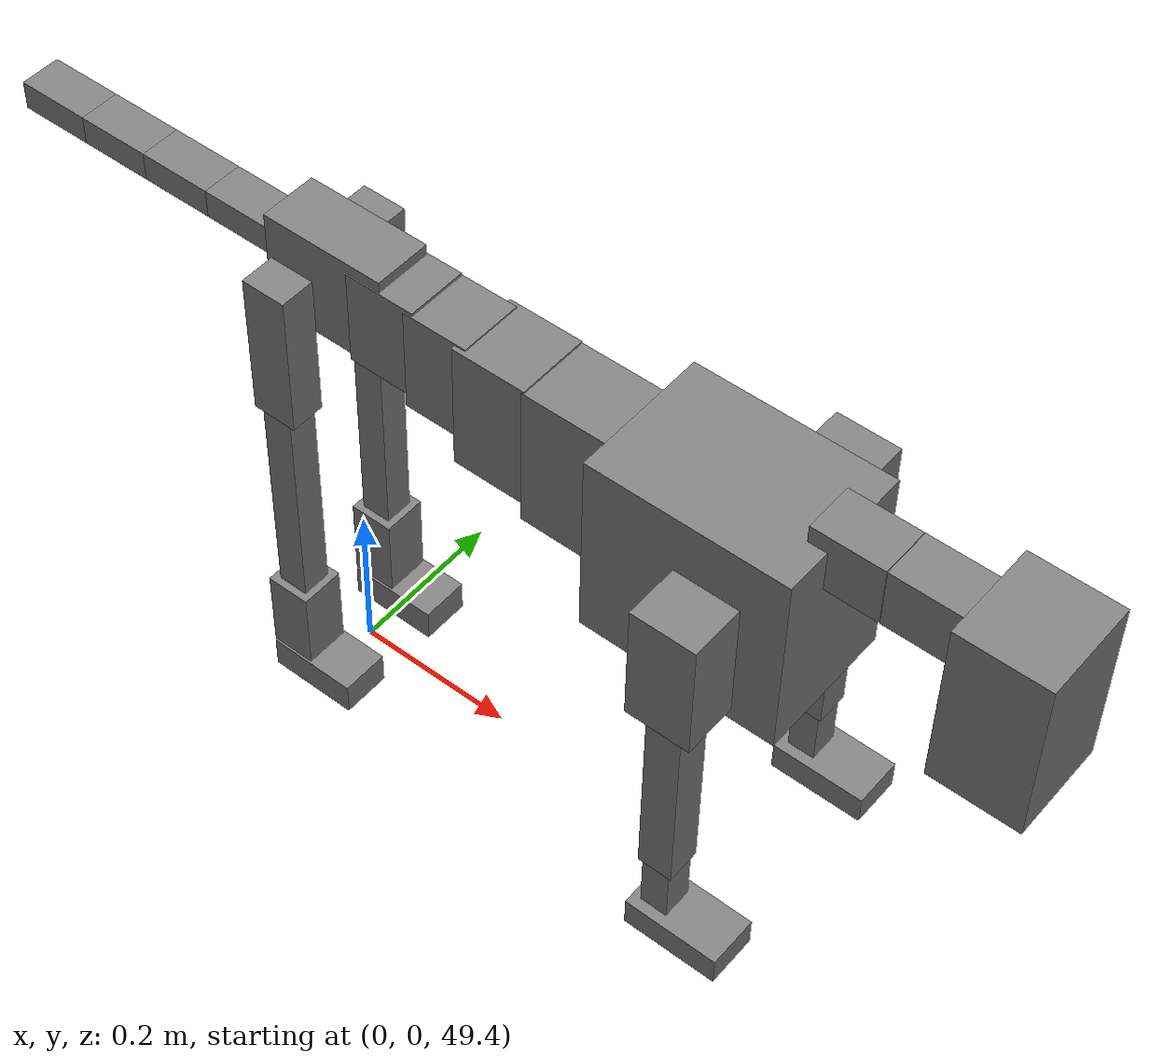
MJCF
<mujoco model="dog">

    <default>
        <joint armature="0.02" stiffness="1" damping="0.2" limited="true"/>
        <geom condim="3" friction="1 0.05 0.05" margin="0.01"/>
        <motor ctrllimited="true" ctrlrange="-1.0 1.0" forcelimited="true" gear="50"/>
    </default>

    <compiler inertiafromgeom="true" angle="radian"/>

    <option timestep="0.016" iterations="50" tolerance="1e-10" solver="Newton" jacobian="dense" cone="pyramidal"/>

    <size nconmax="20000" njmax="60000" nstack="5000000"/>
    <visual>
        <map force="0.1" zfar="30"/>
        <rgba haze="0.15 0.25 0.35 1"/>
        <quality shadowsize="2048"/>
        <global offwidth="800" offheight="800"/>
    </visual>

    <asset>
        <texture type="skybox" builtin="gradient" rgb1="0.3 0.5 0.7" rgb2="0 0 0" width="512" height="512"/>
        <texture name="texplane" type="2d" builtin="checker" rgb1=".2 .3 .4" rgb2=".1 0.15 0.2" width="512" height="512"
                 mark="cross" markrgb=".8 .8 .8"/>
        <texture name="texgeom" type="cube" builtin="flat" mark="cross" width="127" height="1278" rgb1="0.8 0.6 0.4"
                 rgb2="0.8 0.6 0.4" markrgb="1 1 1" random="0.01"/>

        <material name="matplane" reflectance="0.3" texture="texplane" texrepeat="1 1" texuniform="true"/>
        <material name="matgeom" texture="texgeom" texuniform="true" rgba="0.8 0.6 .4 1"/>
    </asset>

    <worldbody>
        <geom name="floor" pos="0 0 0" size="0 0 .25" type="plane" material="matplane" condim="3"/>

        <light directional="false" diffuse=".2 .2 .2" specular="0 0 0" pos="0 0 5" dir="0 0 -1" castshadow="false"/>
        <light mode="targetbodycom" target="torso" directional="false" diffuse=".8 .8 .8" specular="0.3 0.3 0.3"
               pos="0 0 4.0" dir="0 0 -1"/>

        <body name="root" pos="0 0 50">
            <freejoint name="root_1"/>
            <geom type="box" pos="0 0 -0.02" size="0.0774  0.0358  0.063" density="2030"/>

            <body name="spine1" pos="0.054 0 0">
                <joint name="spine1_y" axis="0 1 0" range="0 0.7" limited="true"/>
                <geom type="box" pos="0.02375 0 -0.03" size="0.04375  0.0375  0.05985" density="2030"/>

                <body name="spine2" pos="0.0612 0 0">
                    <joint name="spine2_y" axis="0 1 0" range="-0.15 0.15" limited="true"/>
                    <geom type="box" pos="0.03555  0  -0.04" size="0.04055  0.039  0.06615" density="2030"/>

                    <body name="spine3" pos="0.0730 0 0">
                        <joint name="spine3_y" axis="0 1 0" range="-0.15 0.15" limited="true"/>
                        <geom type="box" pos="0.03555  0  -0.057" size="0.04555  0.0445  0.081" density="2030"/>

                        <body name="spine4" pos="0.0780 0 0">
                            <joint name="spine4_y" axis="0 1 0" range="-0.15 0.15" limited="true"/>
                            <geom type="box" pos="0.05265  0  -0.07" size="0.05265  0.045  0.09135" density="2030"/>

                            <body name="torso" pos="0.1082 0 0">
                                <joint name="torso_y" axis="0 1 0" range="-0.15 0.15" limited="true"/>
                                <geom type="box" pos="0.11925  0  -0.085" size="0.11925  0.085  0.11745"
                                      density="2030"/>

                                <body name="neck1" pos="0.2160  0   0.0180">
                                    <joint name="neck1_y" axis="0 1 0" range="-1.2  -1" limited="true"/>
                                    <geom type="box" pos="0.0423  0  0" size="0.0423  0.03  0.036" density="2325"/>

                                    <body name="neck2" pos="0.0853  0  0">
                                        <joint name="neck2_y" axis="0 1 0" range="0.1  0" limited="true"/>
                                        <geom type="box" pos="0.0423  0  0" size="0.0423  0.03  0.036" density="2325"/>

                                        <body name="head" pos="0.0853  0  0">
                                            <joint name="head_y" axis="0 1 0" range="-0.3  -0.2" limited="true"/>
                                            <geom type="box" pos="0.0531  0  -0.055" size="0.0531  0.06  0.1044"
                                                  density="4030"/>

                                        </body>
                                    </body>
                                </body>

                                <body name="front_shoulder" pos="0.156  0   -0.0480">
                                    <joint name="front_shoulder_y" axis="0 1 0" range="-1 1.5" limited="true"/>
                                    <geom type="box" pos="0 0.13 -0.0475" size="0.0385  0.0329  0.0742" density="1158"/>
                                    <geom type="box" pos="0 -0.13 -0.0475" size="0.0385  0.0329  0.0742"
                                          density="1158"/>

                                    <body name="front_elbow" pos="0  0  -0.0951">
                                        <joint name="front_elbow_y" axis="0 1 0" range="-2 0" limited="true"/>
                                        <geom type="box" pos="0 0.13 -0.1364" size="0.0208  0.0213  0.1364"
                                              density="1081"/>
                                        <geom type="box" pos="0 -0.13 -0.1364" size="0.0208  0.0213  0.1364"
                                              density="1081"/>

                                        <body name="front_wrist" pos="0  0  -0.2727">
                                            <joint name="front_wrist_y" axis="0 1 0" range="-0.2 0" limited="true"/>
                                            <geom type="box" pos="0 0.13 -0.0437" size="0.0167  0.0186  0.0568"
                                                  density="1664"/>
                                            <geom type="box" pos="0 -0.13 -0.0437" size="0.0167  0.0186  0.0568"
                                                  density="1664"/>

                                            <body name="front_finger_end" pos="0  0  -0.0874">
                                                <joint name="front_finger_y" axis="0 1 0" range="-0.4 1"
                                                       limited="true"/>
                                                <geom type="box" pos="0.0316  0.13  -0.0032"
                                                      size="0.0580  0.0316  0.0182" density="1515"/>
                                                <geom type="box" pos="0.0316  -0.13  -0.0032"
                                                      size="0.0580  0.0316  0.0182" density="1515"/>

                                            </body>

                                        </body>
                                    </body>
                                </body>

                            </body>
                        </body>
                    </body>
                </body>
            </body>

            <body name="back_hip" pos="-0.03 0 -0.018">
                <joint name="back_hip_y" axis="0 1 0" range="-1.5 0.3" limited="true"/>
                <geom type="box" pos="0 0.07 -0.0685" size="0.0276  0.0216  0.0913" density="1154"/>
                <geom type="box" pos="0 -0.07 -0.0685" size="0.0276  0.0216  0.0913" density="1154"/>

                <body name="back_knee" pos="0  0  -0.1371">
                    <joint name="back_knee_y" axis="0 1 0" range="0 2.8" limited="true"/>
                    <geom type="box" pos="0 0.07 -0.1559" size="0.0189  0.0186  0.1715" density="1227"/>
                    <geom type="box" pos="0 -0.07 -0.1559" size="0.0189  0.0186  0.1715" density="1227"/>

                    <body name="back_ankle" pos="0  0  -0.3118">
                        <joint name="back_ankle_y" axis="0 1 0" range="-2.2 0" limited="true"/>
                        <geom type="box" pos="0 0.07 -0.0553" size="0.0276  0.0276  0.0666" density="1284"/>
                        <geom type="box" pos="0 -0.07 -0.0553" size="0.0276  0.0276  0.0666" density="1284"/>

                        <body name="back_toe_end" pos="0  0  -0.1106">
                            <joint name="back_toe_y" axis="0 1 0" range="-0.4 1" limited="true"/>
                            <geom type="box" pos="0.0303  0.07  -0.0056" size="0.0556  0.0303  0.0206" density="1515"/>
                            <geom type="box" pos="0.0303  -0.07  -0.0056" size="0.0556  0.0303  0.0206" density="1515"/>

                        </body>
                    </body>
                </body>
            </body>

            <body name="tail1" pos="-0.074 0 -0.006">
                <joint name="tail1_y" axis="0 1 0" range="-0.2 0.2" limited="true"/>
                <geom type="box" pos="-0.0536  0  0" size="0.045  0.025  0.0175" density="1587"/>

                <body name="tail2" pos="-0.09 0 0">
                    <joint name="tail2_y" axis="0 1 0" range="-0.2 0.2" limited="true"/>
                    <geom type="box" pos="-0.0536  0  0" size="0.045  0.025  0.0175" density="1587"/>

                    <body name="tail3" pos="-0.09 0 0">
                        <joint name="tail3_y" axis="0 1 0" range="-0.2 0.2" limited="true"/>
                        <geom type="box" pos="-0.0536  0  0" size="0.045  0.025  0.0175" density="1587"/>

                        <body name="tail4" pos="-0.09 0 0">
                            <joint name="tail4_y" axis="0 1 0" range="-0.2 0.2" limited="true"/>
                            <geom type="box" pos="-0.0536  0  0" size="0.045  0.025  0.0175" density="1587"/>

                        </body>
                    </body>
                </body>
            </body>
        </body>
    </worldbody>

    <actuator>
        <motor joint="spine1_y" forcerange="-150 150     "/>
        <motor joint="spine2_y" forcerange="-150 150     "/>
        <motor joint="spine3_y" forcerange="-150 150     "/>
        <motor joint="spine4_y" forcerange="-150 150     "/>
        <motor joint="torso_y" forcerange="-150 150     "/>
        <motor joint="neck1_y" forcerange="-100 100       "/>
        <motor joint="neck2_y" forcerange="-100 100       "/>
        <motor joint="head_y" forcerange="-150 150       "/>
        <motor joint="front_shoulder_y" forcerange="-182.48 136.76"/>
        <motor joint="front_elbow_y" forcerange="-107.36 147.57"/>
        <motor joint="front_wrist_y" forcerange="-72.84 75.96"/>
        <motor joint="front_finger_y" forcerange="-31.52 97.08"/>
        <motor joint="back_hip_y" forcerange="-219.35 268.96"/>
        <motor joint="back_knee_y" forcerange="-246.42 224.12"/>
        <motor joint="back_angle_y" forcerange="-210.53 130.67"/>
        <motor joint="back_toe_y" forcerange="-68.94 93.65"/>
        <motor joint="tail1_y" forcerange="-50 50     "/>
        <motor joint="tail2_y" forcerange="-50 50     "/>
        <motor joint="tail3_y" forcerange="-50 50     "/>
        <motor joint="tail4_y" forcerange="-50 50     "/>
    </actuator>
</mujoco>
